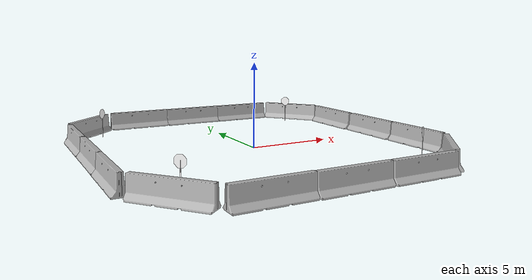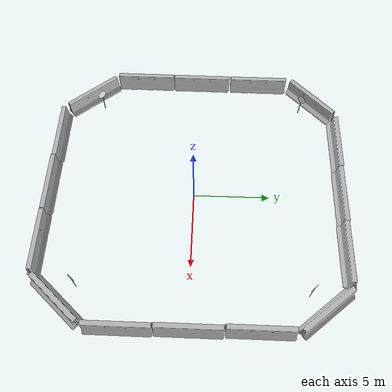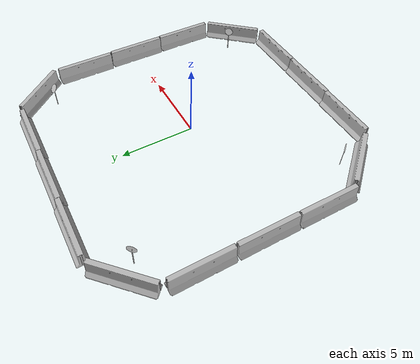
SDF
<?xml version='1.0'?>
<sdf version='1.7'>
  <model name='CloseArea1'>
    <model name='Stop Sign'>
      <static>1</static>
      <link name='link'>
        <collision name='collision'>
          <geometry>
            <mesh>
              <uri>model://stop_sign/meshes/stop_sign.dae</uri>
            </mesh>
          </geometry>
          <max_contacts>10</max_contacts>
          <surface>
            <contact>
              <ode/>
            </contact>
            <bounce/>
            <friction>
              <torsional>
                <ode/>
              </torsional>
              <ode/>
            </friction>
          </surface>
        </collision>
        <visual name='visual'>
          <geometry>
            <mesh>
              <uri>model://stop_sign/meshes/stop_sign.dae</uri>
            </mesh>
          </geometry>
          <material>
            <script>
              <uri>model://stop_sign/materials/scripts</uri>
              <uri>model://stop_sign/materials/textures</uri>
              <name>StopSign/Diffuse</name>
            </script>
          </material>
        </visual>
        <self_collide>0</self_collide>
        <enable_wind>0</enable_wind>
        <kinematic>0</kinematic>
      </link>
      <pose>-7.22822 7.37397 0.007017 0 -0 0.817531</pose>
    </model>
    <model name='Stop Sign_clone'>
      <static>1</static>
      <link name='link'>
        <collision name='collision'>
          <geometry>
            <mesh>
              <uri>model://stop_sign/meshes/stop_sign.dae</uri>
            </mesh>
          </geometry>
          <max_contacts>10</max_contacts>
          <surface>
            <contact>
              <ode/>
            </contact>
            <bounce/>
            <friction>
              <torsional>
                <ode/>
              </torsional>
              <ode/>
            </friction>
          </surface>
        </collision>
        <visual name='visual'>
          <geometry>
            <mesh>
              <uri>model://stop_sign/meshes/stop_sign.dae</uri>
            </mesh>
          </geometry>
          <material>
            <script>
              <uri>model://stop_sign/materials/scripts</uri>
              <uri>model://stop_sign/materials/textures</uri>
              <name>StopSign/Diffuse</name>
            </script>
          </material>
        </visual>
        <self_collide>0</self_collide>
        <enable_wind>0</enable_wind>
        <kinematic>0</kinematic>
      </link>
      <pose>-7.13821 -6.82157 0.007016 0 -0 2.33967</pose>
    </model>
    <model name='Stop Sign_clone_0'>
      <static>1</static>
      <link name='link'>
        <collision name='collision'>
          <geometry>
            <mesh>
              <uri>model://stop_sign/meshes/stop_sign.dae</uri>
            </mesh>
          </geometry>
          <max_contacts>10</max_contacts>
          <surface>
            <contact>
              <ode/>
            </contact>
            <bounce/>
            <friction>
              <torsional>
                <ode/>
              </torsional>
              <ode/>
            </friction>
          </surface>
        </collision>
        <visual name='visual'>
          <geometry>
            <mesh>
              <uri>model://stop_sign/meshes/stop_sign.dae</uri>
            </mesh>
          </geometry>
          <material>
            <script>
              <uri>model://stop_sign/materials/scripts</uri>
              <uri>model://stop_sign/materials/textures</uri>
              <name>StopSign/Diffuse</name>
            </script>
          </material>
        </visual>
        <self_collide>0</self_collide>
        <enable_wind>0</enable_wind>
        <kinematic>0</kinematic>
      </link>
      <pose>6.50021 -6.86088 0.007016 0 0 -2.26485</pose>
    </model>
    <model name='Stop Sign_clone_1'>
      <static>1</static>
      <link name='link'>
        <collision name='collision'>
          <geometry>
            <mesh>
              <uri>model://stop_sign/meshes/stop_sign.dae</uri>
            </mesh>
          </geometry>
          <max_contacts>10</max_contacts>
          <surface>
            <contact>
              <ode/>
            </contact>
            <bounce/>
            <friction>
              <torsional>
                <ode/>
              </torsional>
              <ode/>
            </friction>
          </surface>
        </collision>
        <visual name='visual'>
          <geometry>
            <mesh>
              <uri>model://stop_sign/meshes/stop_sign.dae</uri>
            </mesh>
          </geometry>
          <material>
            <script>
              <uri>model://stop_sign/materials/scripts</uri>
              <uri>model://stop_sign/materials/textures</uri>
              <name>StopSign/Diffuse</name>
            </script>
          </material>
        </visual>
        <self_collide>0</self_collide>
        <enable_wind>0</enable_wind>
        <kinematic>0</kinematic>
      </link>
      <pose>6.57883 7.20988 0.007016 0 0 -0.824905</pose>
    </model>
    <model name='jersey_barrier'>
      <static>1</static>
      <link name='link'>
        <visual name='visual'>
          <geometry>
            <mesh>
              <uri>model://jersey_barrier/meshes/jersey_barrier.dae</uri>
            </mesh>
          </geometry>
        </visual>
        <collision name='upright'>
          <pose>0 0 0.5715 0 -0 0</pose>
          <geometry>
            <box>
              <size>4.06542 0.3063 1.143</size>
            </box>
          </geometry>
          <max_contacts>10</max_contacts>
          <surface>
            <contact>
              <ode/>
            </contact>
            <bounce/>
            <friction>
              <torsional>
                <ode/>
              </torsional>
              <ode/>
            </friction>
          </surface>
        </collision>
        <collision name='base'>
          <pose>0 0 0.032258 0 -0 0</pose>
          <geometry>
            <box>
              <size>4.06542 0.8107 0.064516</size>
            </box>
          </geometry>
          <max_contacts>10</max_contacts>
          <surface>
            <contact>
              <ode/>
            </contact>
            <bounce/>
            <friction>
              <torsional>
                <ode/>
              </torsional>
              <ode/>
            </friction>
          </surface>
        </collision>
        <collision name='base2'>
          <pose>0 0 0.1 0 -0 0</pose>
          <geometry>
            <box>
              <size>4.06542 0.65 0.1</size>
            </box>
          </geometry>
          <max_contacts>10</max_contacts>
          <surface>
            <contact>
              <ode/>
            </contact>
            <bounce/>
            <friction>
              <torsional>
                <ode/>
              </torsional>
              <ode/>
            </friction>
          </surface>
        </collision>
        <collision name='base3'>
          <pose>0 0 0.2 0 -0 0</pose>
          <geometry>
            <box>
              <size>4.06542 0.5 0.1</size>
            </box>
          </geometry>
          <max_contacts>10</max_contacts>
          <surface>
            <contact>
              <ode/>
            </contact>
            <bounce/>
            <friction>
              <torsional>
                <ode/>
              </torsional>
              <ode/>
            </friction>
          </surface>
        </collision>
        <collision name='left-angle'>
          <pose>0 -0.224 0.2401 0.9 -0 0</pose>
          <geometry>
            <box>
              <size>4.06542 0.5 0.064516</size>
            </box>
          </geometry>
          <max_contacts>10</max_contacts>
          <surface>
            <contact>
              <ode/>
            </contact>
            <bounce/>
            <friction>
              <torsional>
                <ode/>
              </torsional>
              <ode/>
            </friction>
          </surface>
        </collision>
        <collision name='right-angle'>
          <pose>0 0.224 0.2401 -0.9 0 0</pose>
          <geometry>
            <box>
              <size>4.06542 0.5 0.064516</size>
            </box>
          </geometry>
          <max_contacts>10</max_contacts>
          <surface>
            <contact>
              <ode/>
            </contact>
            <bounce/>
            <friction>
              <torsional>
                <ode/>
              </torsional>
              <ode/>
            </friction>
          </surface>
        </collision>
        <self_collide>0</self_collide>
        <enable_wind>0</enable_wind>
        <kinematic>0</kinematic>
      </link>
      <pose>7.49146 -7.87127 0.005921 0 -0 0.854903</pose>
    </model>
    <model name='jersey_barrier_clone'>
      <static>1</static>
      <link name='link'>
        <visual name='visual'>
          <geometry>
            <mesh>
              <uri>model://jersey_barrier/meshes/jersey_barrier.dae</uri>
            </mesh>
          </geometry>
        </visual>
        <collision name='upright'>
          <pose>0 0 0.5715 0 -0 0</pose>
          <geometry>
            <box>
              <size>4.06542 0.3063 1.143</size>
            </box>
          </geometry>
          <max_contacts>10</max_contacts>
          <surface>
            <contact>
              <ode/>
            </contact>
            <bounce/>
            <friction>
              <torsional>
                <ode/>
              </torsional>
              <ode/>
            </friction>
          </surface>
        </collision>
        <collision name='base'>
          <pose>0 0 0.032258 0 -0 0</pose>
          <geometry>
            <box>
              <size>4.06542 0.8107 0.064516</size>
            </box>
          </geometry>
          <max_contacts>10</max_contacts>
          <surface>
            <contact>
              <ode/>
            </contact>
            <bounce/>
            <friction>
              <torsional>
                <ode/>
              </torsional>
              <ode/>
            </friction>
          </surface>
        </collision>
        <collision name='base2'>
          <pose>0 0 0.1 0 -0 0</pose>
          <geometry>
            <box>
              <size>4.06542 0.65 0.1</size>
            </box>
          </geometry>
          <max_contacts>10</max_contacts>
          <surface>
            <contact>
              <ode/>
            </contact>
            <bounce/>
            <friction>
              <torsional>
                <ode/>
              </torsional>
              <ode/>
            </friction>
          </surface>
        </collision>
        <collision name='base3'>
          <pose>0 0 0.2 0 -0 0</pose>
          <geometry>
            <box>
              <size>4.06542 0.5 0.1</size>
            </box>
          </geometry>
          <max_contacts>10</max_contacts>
          <surface>
            <contact>
              <ode/>
            </contact>
            <bounce/>
            <friction>
              <torsional>
                <ode/>
              </torsional>
              <ode/>
            </friction>
          </surface>
        </collision>
        <collision name='left-angle'>
          <pose>0 -0.224 0.2401 0.9 -0 0</pose>
          <geometry>
            <box>
              <size>4.06542 0.5 0.064516</size>
            </box>
          </geometry>
          <max_contacts>10</max_contacts>
          <surface>
            <contact>
              <ode/>
            </contact>
            <bounce/>
            <friction>
              <torsional>
                <ode/>
              </torsional>
              <ode/>
            </friction>
          </surface>
        </collision>
        <collision name='right-angle'>
          <pose>0 0.224 0.2401 -0.9 0 0</pose>
          <geometry>
            <box>
              <size>4.06542 0.5 0.064516</size>
            </box>
          </geometry>
          <max_contacts>10</max_contacts>
          <surface>
            <contact>
              <ode/>
            </contact>
            <bounce/>
            <friction>
              <torsional>
                <ode/>
              </torsional>
              <ode/>
            </friction>
          </surface>
        </collision>
        <self_collide>0</self_collide>
        <enable_wind>0</enable_wind>
        <kinematic>0</kinematic>
      </link>
      <pose>7.60825 8.09586 0.003838 0 0 -0.877727</pose>
    </model>
    <model name='jersey_barrier_clone_0'>
      <static>1</static>
      <link name='link'>
        <visual name='visual'>
          <geometry>
            <mesh>
              <uri>model://jersey_barrier/meshes/jersey_barrier.dae</uri>
            </mesh>
          </geometry>
        </visual>
        <collision name='upright'>
          <pose>0 0 0.5715 0 -0 0</pose>
          <geometry>
            <box>
              <size>4.06542 0.3063 1.143</size>
            </box>
          </geometry>
          <max_contacts>10</max_contacts>
          <surface>
            <contact>
              <ode/>
            </contact>
            <bounce/>
            <friction>
              <torsional>
                <ode/>
              </torsional>
              <ode/>
            </friction>
          </surface>
        </collision>
        <collision name='base'>
          <pose>0 0 0.032258 0 -0 0</pose>
          <geometry>
            <box>
              <size>4.06542 0.8107 0.064516</size>
            </box>
          </geometry>
          <max_contacts>10</max_contacts>
          <surface>
            <contact>
              <ode/>
            </contact>
            <bounce/>
            <friction>
              <torsional>
                <ode/>
              </torsional>
              <ode/>
            </friction>
          </surface>
        </collision>
        <collision name='base2'>
          <pose>0 0 0.1 0 -0 0</pose>
          <geometry>
            <box>
              <size>4.06542 0.65 0.1</size>
            </box>
          </geometry>
          <max_contacts>10</max_contacts>
          <surface>
            <contact>
              <ode/>
            </contact>
            <bounce/>
            <friction>
              <torsional>
                <ode/>
              </torsional>
              <ode/>
            </friction>
          </surface>
        </collision>
        <collision name='base3'>
          <pose>0 0 0.2 0 -0 0</pose>
          <geometry>
            <box>
              <size>4.06542 0.5 0.1</size>
            </box>
          </geometry>
          <max_contacts>10</max_contacts>
          <surface>
            <contact>
              <ode/>
            </contact>
            <bounce/>
            <friction>
              <torsional>
                <ode/>
              </torsional>
              <ode/>
            </friction>
          </surface>
        </collision>
        <collision name='left-angle'>
          <pose>0 -0.224 0.2401 0.9 -0 0</pose>
          <geometry>
            <box>
              <size>4.06542 0.5 0.064516</size>
            </box>
          </geometry>
          <max_contacts>10</max_contacts>
          <surface>
            <contact>
              <ode/>
            </contact>
            <bounce/>
            <friction>
              <torsional>
                <ode/>
              </torsional>
              <ode/>
            </friction>
          </surface>
        </collision>
        <collision name='right-angle'>
          <pose>0 0.224 0.2401 -0.9 0 0</pose>
          <geometry>
            <box>
              <size>4.06542 0.5 0.064516</size>
            </box>
          </geometry>
          <max_contacts>10</max_contacts>
          <surface>
            <contact>
              <ode/>
            </contact>
            <bounce/>
            <friction>
              <torsional>
                <ode/>
              </torsional>
              <ode/>
            </friction>
          </surface>
        </collision>
        <self_collide>0</self_collide>
        <enable_wind>0</enable_wind>
        <kinematic>0</kinematic>
      </link>
      <pose>3.88632 -9.57923 0.003838 0 -0 0</pose>
    </model>
    <model name='jersey_barrier_clone_1'>
      <static>1</static>
      <link name='link'>
        <visual name='visual'>
          <geometry>
            <mesh>
              <uri>model://jersey_barrier/meshes/jersey_barrier.dae</uri>
            </mesh>
          </geometry>
        </visual>
        <collision name='upright'>
          <pose>0 0 0.5715 0 -0 0</pose>
          <geometry>
            <box>
              <size>4.06542 0.3063 1.143</size>
            </box>
          </geometry>
          <max_contacts>10</max_contacts>
          <surface>
            <contact>
              <ode/>
            </contact>
            <bounce/>
            <friction>
              <torsional>
                <ode/>
              </torsional>
              <ode/>
            </friction>
          </surface>
        </collision>
        <collision name='base'>
          <pose>0 0 0.032258 0 -0 0</pose>
          <geometry>
            <box>
              <size>4.06542 0.8107 0.064516</size>
            </box>
          </geometry>
          <max_contacts>10</max_contacts>
          <surface>
            <contact>
              <ode/>
            </contact>
            <bounce/>
            <friction>
              <torsional>
                <ode/>
              </torsional>
              <ode/>
            </friction>
          </surface>
        </collision>
        <collision name='base2'>
          <pose>0 0 0.1 0 -0 0</pose>
          <geometry>
            <box>
              <size>4.06542 0.65 0.1</size>
            </box>
          </geometry>
          <max_contacts>10</max_contacts>
          <surface>
            <contact>
              <ode/>
            </contact>
            <bounce/>
            <friction>
              <torsional>
                <ode/>
              </torsional>
              <ode/>
            </friction>
          </surface>
        </collision>
        <collision name='base3'>
          <pose>0 0 0.2 0 -0 0</pose>
          <geometry>
            <box>
              <size>4.06542 0.5 0.1</size>
            </box>
          </geometry>
          <max_contacts>10</max_contacts>
          <surface>
            <contact>
              <ode/>
            </contact>
            <bounce/>
            <friction>
              <torsional>
                <ode/>
              </torsional>
              <ode/>
            </friction>
          </surface>
        </collision>
        <collision name='left-angle'>
          <pose>0 -0.224 0.2401 0.9 -0 0</pose>
          <geometry>
            <box>
              <size>4.06542 0.5 0.064516</size>
            </box>
          </geometry>
          <max_contacts>10</max_contacts>
          <surface>
            <contact>
              <ode/>
            </contact>
            <bounce/>
            <friction>
              <torsional>
                <ode/>
              </torsional>
              <ode/>
            </friction>
          </surface>
        </collision>
        <collision name='right-angle'>
          <pose>0 0.224 0.2401 -0.9 0 0</pose>
          <geometry>
            <box>
              <size>4.06542 0.5 0.064516</size>
            </box>
          </geometry>
          <max_contacts>10</max_contacts>
          <surface>
            <contact>
              <ode/>
            </contact>
            <bounce/>
            <friction>
              <torsional>
                <ode/>
              </torsional>
              <ode/>
            </friction>
          </surface>
        </collision>
        <self_collide>0</self_collide>
        <enable_wind>0</enable_wind>
        <kinematic>0</kinematic>
      </link>
      <pose>-0.211579 -9.56071 0.003838 0 -0 0</pose>
    </model>
    <model name='jersey_barrier_clone_2'>
      <static>1</static>
      <link name='link'>
        <visual name='visual'>
          <geometry>
            <mesh>
              <uri>model://jersey_barrier/meshes/jersey_barrier.dae</uri>
            </mesh>
          </geometry>
        </visual>
        <collision name='upright'>
          <pose>0 0 0.5715 0 -0 0</pose>
          <geometry>
            <box>
              <size>4.06542 0.3063 1.143</size>
            </box>
          </geometry>
          <max_contacts>10</max_contacts>
          <surface>
            <contact>
              <ode/>
            </contact>
            <bounce/>
            <friction>
              <torsional>
                <ode/>
              </torsional>
              <ode/>
            </friction>
          </surface>
        </collision>
        <collision name='base'>
          <pose>0 0 0.032258 0 -0 0</pose>
          <geometry>
            <box>
              <size>4.06542 0.8107 0.064516</size>
            </box>
          </geometry>
          <max_contacts>10</max_contacts>
          <surface>
            <contact>
              <ode/>
            </contact>
            <bounce/>
            <friction>
              <torsional>
                <ode/>
              </torsional>
              <ode/>
            </friction>
          </surface>
        </collision>
        <collision name='base2'>
          <pose>0 0 0.1 0 -0 0</pose>
          <geometry>
            <box>
              <size>4.06542 0.65 0.1</size>
            </box>
          </geometry>
          <max_contacts>10</max_contacts>
          <surface>
            <contact>
              <ode/>
            </contact>
            <bounce/>
            <friction>
              <torsional>
                <ode/>
              </torsional>
              <ode/>
            </friction>
          </surface>
        </collision>
        <collision name='base3'>
          <pose>0 0 0.2 0 -0 0</pose>
          <geometry>
            <box>
              <size>4.06542 0.5 0.1</size>
            </box>
          </geometry>
          <max_contacts>10</max_contacts>
          <surface>
            <contact>
              <ode/>
            </contact>
            <bounce/>
            <friction>
              <torsional>
                <ode/>
              </torsional>
              <ode/>
            </friction>
          </surface>
        </collision>
        <collision name='left-angle'>
          <pose>0 -0.224 0.2401 0.9 -0 0</pose>
          <geometry>
            <box>
              <size>4.06542 0.5 0.064516</size>
            </box>
          </geometry>
          <max_contacts>10</max_contacts>
          <surface>
            <contact>
              <ode/>
            </contact>
            <bounce/>
            <friction>
              <torsional>
                <ode/>
              </torsional>
              <ode/>
            </friction>
          </surface>
        </collision>
        <collision name='right-angle'>
          <pose>0 0.224 0.2401 -0.9 0 0</pose>
          <geometry>
            <box>
              <size>4.06542 0.5 0.064516</size>
            </box>
          </geometry>
          <max_contacts>10</max_contacts>
          <surface>
            <contact>
              <ode/>
            </contact>
            <bounce/>
            <friction>
              <torsional>
                <ode/>
              </torsional>
              <ode/>
            </friction>
          </surface>
        </collision>
        <self_collide>0</self_collide>
        <enable_wind>0</enable_wind>
        <kinematic>0</kinematic>
      </link>
      <pose>-4.26169 -9.50069 0.003838 0 -0 0</pose>
    </model>
    <model name='jersey_barrier_clone_3'>
      <static>1</static>
      <link name='link'>
        <visual name='visual'>
          <geometry>
            <mesh>
              <uri>model://jersey_barrier/meshes/jersey_barrier.dae</uri>
            </mesh>
          </geometry>
        </visual>
        <collision name='upright'>
          <pose>0 0 0.5715 0 -0 0</pose>
          <geometry>
            <box>
              <size>4.06542 0.3063 1.143</size>
            </box>
          </geometry>
          <max_contacts>10</max_contacts>
          <surface>
            <contact>
              <ode/>
            </contact>
            <bounce/>
            <friction>
              <torsional>
                <ode/>
              </torsional>
              <ode/>
            </friction>
          </surface>
        </collision>
        <collision name='base'>
          <pose>0 0 0.032258 0 -0 0</pose>
          <geometry>
            <box>
              <size>4.06542 0.8107 0.064516</size>
            </box>
          </geometry>
          <max_contacts>10</max_contacts>
          <surface>
            <contact>
              <ode/>
            </contact>
            <bounce/>
            <friction>
              <torsional>
                <ode/>
              </torsional>
              <ode/>
            </friction>
          </surface>
        </collision>
        <collision name='base2'>
          <pose>0 0 0.1 0 -0 0</pose>
          <geometry>
            <box>
              <size>4.06542 0.65 0.1</size>
            </box>
          </geometry>
          <max_contacts>10</max_contacts>
          <surface>
            <contact>
              <ode/>
            </contact>
            <bounce/>
            <friction>
              <torsional>
                <ode/>
              </torsional>
              <ode/>
            </friction>
          </surface>
        </collision>
        <collision name='base3'>
          <pose>0 0 0.2 0 -0 0</pose>
          <geometry>
            <box>
              <size>4.06542 0.5 0.1</size>
            </box>
          </geometry>
          <max_contacts>10</max_contacts>
          <surface>
            <contact>
              <ode/>
            </contact>
            <bounce/>
            <friction>
              <torsional>
                <ode/>
              </torsional>
              <ode/>
            </friction>
          </surface>
        </collision>
        <collision name='left-angle'>
          <pose>0 -0.224 0.2401 0.9 -0 0</pose>
          <geometry>
            <box>
              <size>4.06542 0.5 0.064516</size>
            </box>
          </geometry>
          <max_contacts>10</max_contacts>
          <surface>
            <contact>
              <ode/>
            </contact>
            <bounce/>
            <friction>
              <torsional>
                <ode/>
              </torsional>
              <ode/>
            </friction>
          </surface>
        </collision>
        <collision name='right-angle'>
          <pose>0 0.224 0.2401 -0.9 0 0</pose>
          <geometry>
            <box>
              <size>4.06542 0.5 0.064516</size>
            </box>
          </geometry>
          <max_contacts>10</max_contacts>
          <surface>
            <contact>
              <ode/>
            </contact>
            <bounce/>
            <friction>
              <torsional>
                <ode/>
              </torsional>
              <ode/>
            </friction>
          </surface>
        </collision>
        <self_collide>0</self_collide>
        <enable_wind>0</enable_wind>
        <kinematic>0</kinematic>
      </link>
      <pose>-7.84176 -7.62913 0.003838 0 0 -0.867873</pose>
    </model>
    <model name='jersey_barrier_clone_4'>
      <static>1</static>
      <link name='link'>
        <visual name='visual'>
          <geometry>
            <mesh>
              <uri>model://jersey_barrier/meshes/jersey_barrier.dae</uri>
            </mesh>
          </geometry>
        </visual>
        <collision name='upright'>
          <pose>0 0 0.5715 0 -0 0</pose>
          <geometry>
            <box>
              <size>4.06542 0.3063 1.143</size>
            </box>
          </geometry>
          <max_contacts>10</max_contacts>
          <surface>
            <contact>
              <ode/>
            </contact>
            <bounce/>
            <friction>
              <torsional>
                <ode/>
              </torsional>
              <ode/>
            </friction>
          </surface>
        </collision>
        <collision name='base'>
          <pose>0 0 0.032258 0 -0 0</pose>
          <geometry>
            <box>
              <size>4.06542 0.8107 0.064516</size>
            </box>
          </geometry>
          <max_contacts>10</max_contacts>
          <surface>
            <contact>
              <ode/>
            </contact>
            <bounce/>
            <friction>
              <torsional>
                <ode/>
              </torsional>
              <ode/>
            </friction>
          </surface>
        </collision>
        <collision name='base2'>
          <pose>0 0 0.1 0 -0 0</pose>
          <geometry>
            <box>
              <size>4.06542 0.65 0.1</size>
            </box>
          </geometry>
          <max_contacts>10</max_contacts>
          <surface>
            <contact>
              <ode/>
            </contact>
            <bounce/>
            <friction>
              <torsional>
                <ode/>
              </torsional>
              <ode/>
            </friction>
          </surface>
        </collision>
        <collision name='base3'>
          <pose>0 0 0.2 0 -0 0</pose>
          <geometry>
            <box>
              <size>4.06542 0.5 0.1</size>
            </box>
          </geometry>
          <max_contacts>10</max_contacts>
          <surface>
            <contact>
              <ode/>
            </contact>
            <bounce/>
            <friction>
              <torsional>
                <ode/>
              </torsional>
              <ode/>
            </friction>
          </surface>
        </collision>
        <collision name='left-angle'>
          <pose>0 -0.224 0.2401 0.9 -0 0</pose>
          <geometry>
            <box>
              <size>4.06542 0.5 0.064516</size>
            </box>
          </geometry>
          <max_contacts>10</max_contacts>
          <surface>
            <contact>
              <ode/>
            </contact>
            <bounce/>
            <friction>
              <torsional>
                <ode/>
              </torsional>
              <ode/>
            </friction>
          </surface>
        </collision>
        <collision name='right-angle'>
          <pose>0 0.224 0.2401 -0.9 0 0</pose>
          <geometry>
            <box>
              <size>4.06542 0.5 0.064516</size>
            </box>
          </geometry>
          <max_contacts>10</max_contacts>
          <surface>
            <contact>
              <ode/>
            </contact>
            <bounce/>
            <friction>
              <torsional>
                <ode/>
              </torsional>
              <ode/>
            </friction>
          </surface>
        </collision>
        <self_collide>0</self_collide>
        <enable_wind>0</enable_wind>
        <kinematic>0</kinematic>
      </link>
      <pose>3.98348 9.66846 0.003838 0 -0 0</pose>
    </model>
    <model name='jersey_barrier_clone_5'>
      <static>1</static>
      <link name='link'>
        <visual name='visual'>
          <geometry>
            <mesh>
              <uri>model://jersey_barrier/meshes/jersey_barrier.dae</uri>
            </mesh>
          </geometry>
        </visual>
        <collision name='upright'>
          <pose>0 0 0.5715 0 -0 0</pose>
          <geometry>
            <box>
              <size>4.06542 0.3063 1.143</size>
            </box>
          </geometry>
          <max_contacts>10</max_contacts>
          <surface>
            <contact>
              <ode/>
            </contact>
            <bounce/>
            <friction>
              <torsional>
                <ode/>
              </torsional>
              <ode/>
            </friction>
          </surface>
        </collision>
        <collision name='base'>
          <pose>0 0 0.032258 0 -0 0</pose>
          <geometry>
            <box>
              <size>4.06542 0.8107 0.064516</size>
            </box>
          </geometry>
          <max_contacts>10</max_contacts>
          <surface>
            <contact>
              <ode/>
            </contact>
            <bounce/>
            <friction>
              <torsional>
                <ode/>
              </torsional>
              <ode/>
            </friction>
          </surface>
        </collision>
        <collision name='base2'>
          <pose>0 0 0.1 0 -0 0</pose>
          <geometry>
            <box>
              <size>4.06542 0.65 0.1</size>
            </box>
          </geometry>
          <max_contacts>10</max_contacts>
          <surface>
            <contact>
              <ode/>
            </contact>
            <bounce/>
            <friction>
              <torsional>
                <ode/>
              </torsional>
              <ode/>
            </friction>
          </surface>
        </collision>
        <collision name='base3'>
          <pose>0 0 0.2 0 -0 0</pose>
          <geometry>
            <box>
              <size>4.06542 0.5 0.1</size>
            </box>
          </geometry>
          <max_contacts>10</max_contacts>
          <surface>
            <contact>
              <ode/>
            </contact>
            <bounce/>
            <friction>
              <torsional>
                <ode/>
              </torsional>
              <ode/>
            </friction>
          </surface>
        </collision>
        <collision name='left-angle'>
          <pose>0 -0.224 0.2401 0.9 -0 0</pose>
          <geometry>
            <box>
              <size>4.06542 0.5 0.064516</size>
            </box>
          </geometry>
          <max_contacts>10</max_contacts>
          <surface>
            <contact>
              <ode/>
            </contact>
            <bounce/>
            <friction>
              <torsional>
                <ode/>
              </torsional>
              <ode/>
            </friction>
          </surface>
        </collision>
        <collision name='right-angle'>
          <pose>0 0.224 0.2401 -0.9 0 0</pose>
          <geometry>
            <box>
              <size>4.06542 0.5 0.064516</size>
            </box>
          </geometry>
          <max_contacts>10</max_contacts>
          <surface>
            <contact>
              <ode/>
            </contact>
            <bounce/>
            <friction>
              <torsional>
                <ode/>
              </torsional>
              <ode/>
            </friction>
          </surface>
        </collision>
        <self_collide>0</self_collide>
        <enable_wind>0</enable_wind>
        <kinematic>0</kinematic>
      </link>
      <pose>-0.027004 9.71828 0.003838 0 -0 0</pose>
    </model>
    <model name='jersey_barrier_clone_6'>
      <static>1</static>
      <link name='link'>
        <visual name='visual'>
          <geometry>
            <mesh>
              <uri>model://jersey_barrier/meshes/jersey_barrier.dae</uri>
            </mesh>
          </geometry>
        </visual>
        <collision name='upright'>
          <pose>0 0 0.5715 0 -0 0</pose>
          <geometry>
            <box>
              <size>4.06542 0.3063 1.143</size>
            </box>
          </geometry>
          <max_contacts>10</max_contacts>
          <surface>
            <contact>
              <ode/>
            </contact>
            <bounce/>
            <friction>
              <torsional>
                <ode/>
              </torsional>
              <ode/>
            </friction>
          </surface>
        </collision>
        <collision name='base'>
          <pose>0 0 0.032258 0 -0 0</pose>
          <geometry>
            <box>
              <size>4.06542 0.8107 0.064516</size>
            </box>
          </geometry>
          <max_contacts>10</max_contacts>
          <surface>
            <contact>
              <ode/>
            </contact>
            <bounce/>
            <friction>
              <torsional>
                <ode/>
              </torsional>
              <ode/>
            </friction>
          </surface>
        </collision>
        <collision name='base2'>
          <pose>0 0 0.1 0 -0 0</pose>
          <geometry>
            <box>
              <size>4.06542 0.65 0.1</size>
            </box>
          </geometry>
          <max_contacts>10</max_contacts>
          <surface>
            <contact>
              <ode/>
            </contact>
            <bounce/>
            <friction>
              <torsional>
                <ode/>
              </torsional>
              <ode/>
            </friction>
          </surface>
        </collision>
        <collision name='base3'>
          <pose>0 0 0.2 0 -0 0</pose>
          <geometry>
            <box>
              <size>4.06542 0.5 0.1</size>
            </box>
          </geometry>
          <max_contacts>10</max_contacts>
          <surface>
            <contact>
              <ode/>
            </contact>
            <bounce/>
            <friction>
              <torsional>
                <ode/>
              </torsional>
              <ode/>
            </friction>
          </surface>
        </collision>
        <collision name='left-angle'>
          <pose>0 -0.224 0.2401 0.9 -0 0</pose>
          <geometry>
            <box>
              <size>4.06542 0.5 0.064516</size>
            </box>
          </geometry>
          <max_contacts>10</max_contacts>
          <surface>
            <contact>
              <ode/>
            </contact>
            <bounce/>
            <friction>
              <torsional>
                <ode/>
              </torsional>
              <ode/>
            </friction>
          </surface>
        </collision>
        <collision name='right-angle'>
          <pose>0 0.224 0.2401 -0.9 0 0</pose>
          <geometry>
            <box>
              <size>4.06542 0.5 0.064516</size>
            </box>
          </geometry>
          <max_contacts>10</max_contacts>
          <surface>
            <contact>
              <ode/>
            </contact>
            <bounce/>
            <friction>
              <torsional>
                <ode/>
              </torsional>
              <ode/>
            </friction>
          </surface>
        </collision>
        <self_collide>0</self_collide>
        <enable_wind>0</enable_wind>
        <kinematic>0</kinematic>
      </link>
      <pose>-4.06241 9.7681 0.003838 0 -0 0</pose>
    </model>
    <model name='jersey_barrier_clone_7'>
      <static>1</static>
      <link name='link'>
        <visual name='visual'>
          <geometry>
            <mesh>
              <uri>model://jersey_barrier/meshes/jersey_barrier.dae</uri>
            </mesh>
          </geometry>
        </visual>
        <collision name='upright'>
          <pose>0 0 0.5715 0 -0 0</pose>
          <geometry>
            <box>
              <size>4.06542 0.3063 1.143</size>
            </box>
          </geometry>
          <max_contacts>10</max_contacts>
          <surface>
            <contact>
              <ode/>
            </contact>
            <bounce/>
            <friction>
              <torsional>
                <ode/>
              </torsional>
              <ode/>
            </friction>
          </surface>
        </collision>
        <collision name='base'>
          <pose>0 0 0.032258 0 -0 0</pose>
          <geometry>
            <box>
              <size>4.06542 0.8107 0.064516</size>
            </box>
          </geometry>
          <max_contacts>10</max_contacts>
          <surface>
            <contact>
              <ode/>
            </contact>
            <bounce/>
            <friction>
              <torsional>
                <ode/>
              </torsional>
              <ode/>
            </friction>
          </surface>
        </collision>
        <collision name='base2'>
          <pose>0 0 0.1 0 -0 0</pose>
          <geometry>
            <box>
              <size>4.06542 0.65 0.1</size>
            </box>
          </geometry>
          <max_contacts>10</max_contacts>
          <surface>
            <contact>
              <ode/>
            </contact>
            <bounce/>
            <friction>
              <torsional>
                <ode/>
              </torsional>
              <ode/>
            </friction>
          </surface>
        </collision>
        <collision name='base3'>
          <pose>0 0 0.2 0 -0 0</pose>
          <geometry>
            <box>
              <size>4.06542 0.5 0.1</size>
            </box>
          </geometry>
          <max_contacts>10</max_contacts>
          <surface>
            <contact>
              <ode/>
            </contact>
            <bounce/>
            <friction>
              <torsional>
                <ode/>
              </torsional>
              <ode/>
            </friction>
          </surface>
        </collision>
        <collision name='left-angle'>
          <pose>0 -0.224 0.2401 0.9 -0 0</pose>
          <geometry>
            <box>
              <size>4.06542 0.5 0.064516</size>
            </box>
          </geometry>
          <max_contacts>10</max_contacts>
          <surface>
            <contact>
              <ode/>
            </contact>
            <bounce/>
            <friction>
              <torsional>
                <ode/>
              </torsional>
              <ode/>
            </friction>
          </surface>
        </collision>
        <collision name='right-angle'>
          <pose>0 0.224 0.2401 -0.9 0 0</pose>
          <geometry>
            <box>
              <size>4.06542 0.5 0.064516</size>
            </box>
          </geometry>
          <max_contacts>10</max_contacts>
          <surface>
            <contact>
              <ode/>
            </contact>
            <bounce/>
            <friction>
              <torsional>
                <ode/>
              </torsional>
              <ode/>
            </friction>
          </surface>
        </collision>
        <self_collide>0</self_collide>
        <enable_wind>0</enable_wind>
        <kinematic>0</kinematic>
      </link>
      <pose>-7.88206 8.24937 0.003838 0 -0 0.777387</pose>
    </model>
    <model name='jersey_barrier_clone_8_clone'>
      <static>1</static>
      <link name='link'>
        <visual name='visual'>
          <geometry>
            <mesh>
              <uri>model://jersey_barrier/meshes/jersey_barrier.dae</uri>
            </mesh>
          </geometry>
        </visual>
        <collision name='upright'>
          <pose>0 0 0.5715 0 -0 0</pose>
          <geometry>
            <box>
              <size>4.06542 0.3063 1.143</size>
            </box>
          </geometry>
          <max_contacts>10</max_contacts>
          <surface>
            <contact>
              <ode/>
            </contact>
            <bounce/>
            <friction>
              <torsional>
                <ode/>
              </torsional>
              <ode/>
            </friction>
          </surface>
        </collision>
        <collision name='base'>
          <pose>0 0 0.032258 0 -0 0</pose>
          <geometry>
            <box>
              <size>4.06542 0.8107 0.064516</size>
            </box>
          </geometry>
          <max_contacts>10</max_contacts>
          <surface>
            <contact>
              <ode/>
            </contact>
            <bounce/>
            <friction>
              <torsional>
                <ode/>
              </torsional>
              <ode/>
            </friction>
          </surface>
        </collision>
        <collision name='base2'>
          <pose>0 0 0.1 0 -0 0</pose>
          <geometry>
            <box>
              <size>4.06542 0.65 0.1</size>
            </box>
          </geometry>
          <max_contacts>10</max_contacts>
          <surface>
            <contact>
              <ode/>
            </contact>
            <bounce/>
            <friction>
              <torsional>
                <ode/>
              </torsional>
              <ode/>
            </friction>
          </surface>
        </collision>
        <collision name='base3'>
          <pose>0 0 0.2 0 -0 0</pose>
          <geometry>
            <box>
              <size>4.06542 0.5 0.1</size>
            </box>
          </geometry>
          <max_contacts>10</max_contacts>
          <surface>
            <contact>
              <ode/>
            </contact>
            <bounce/>
            <friction>
              <torsional>
                <ode/>
              </torsional>
              <ode/>
            </friction>
          </surface>
        </collision>
        <collision name='left-angle'>
          <pose>0 -0.224 0.2401 0.9 -0 0</pose>
          <geometry>
            <box>
              <size>4.06542 0.5 0.064516</size>
            </box>
          </geometry>
          <max_contacts>10</max_contacts>
          <surface>
            <contact>
              <ode/>
            </contact>
            <bounce/>
            <friction>
              <torsional>
                <ode/>
              </torsional>
              <ode/>
            </friction>
          </surface>
        </collision>
        <collision name='right-angle'>
          <pose>0 0.224 0.2401 -0.9 0 0</pose>
          <geometry>
            <box>
              <size>4.06542 0.5 0.064516</size>
            </box>
          </geometry>
          <max_contacts>10</max_contacts>
          <surface>
            <contact>
              <ode/>
            </contact>
            <bounce/>
            <friction>
              <torsional>
                <ode/>
              </torsional>
              <ode/>
            </friction>
          </surface>
        </collision>
        <self_collide>0</self_collide>
        <enable_wind>0</enable_wind>
        <kinematic>0</kinematic>
      </link>
      <pose>-9.37857 4.41908 0.003838 0 -0 1.56837</pose>
    </model>
    <model name='jersey_barrier_clone_8_clone_0'>
      <static>1</static>
      <link name='link'>
        <visual name='visual'>
          <geometry>
            <mesh>
              <uri>model://jersey_barrier/meshes/jersey_barrier.dae</uri>
            </mesh>
          </geometry>
        </visual>
        <collision name='upright'>
          <pose>0 0 0.5715 0 -0 0</pose>
          <geometry>
            <box>
              <size>4.06542 0.3063 1.143</size>
            </box>
          </geometry>
          <max_contacts>10</max_contacts>
          <surface>
            <contact>
              <ode/>
            </contact>
            <bounce/>
            <friction>
              <torsional>
                <ode/>
              </torsional>
              <ode/>
            </friction>
          </surface>
        </collision>
        <collision name='base'>
          <pose>0 0 0.032258 0 -0 0</pose>
          <geometry>
            <box>
              <size>4.06542 0.8107 0.064516</size>
            </box>
          </geometry>
          <max_contacts>10</max_contacts>
          <surface>
            <contact>
              <ode/>
            </contact>
            <bounce/>
            <friction>
              <torsional>
                <ode/>
              </torsional>
              <ode/>
            </friction>
          </surface>
        </collision>
        <collision name='base2'>
          <pose>0 0 0.1 0 -0 0</pose>
          <geometry>
            <box>
              <size>4.06542 0.65 0.1</size>
            </box>
          </geometry>
          <max_contacts>10</max_contacts>
          <surface>
            <contact>
              <ode/>
            </contact>
            <bounce/>
            <friction>
              <torsional>
                <ode/>
              </torsional>
              <ode/>
            </friction>
          </surface>
        </collision>
        <collision name='base3'>
          <pose>0 0 0.2 0 -0 0</pose>
          <geometry>
            <box>
              <size>4.06542 0.5 0.1</size>
            </box>
          </geometry>
          <max_contacts>10</max_contacts>
          <surface>
            <contact>
              <ode/>
            </contact>
            <bounce/>
            <friction>
              <torsional>
                <ode/>
              </torsional>
              <ode/>
            </friction>
          </surface>
        </collision>
        <collision name='left-angle'>
          <pose>0 -0.224 0.2401 0.9 -0 0</pose>
          <geometry>
            <box>
              <size>4.06542 0.5 0.064516</size>
            </box>
          </geometry>
          <max_contacts>10</max_contacts>
          <surface>
            <contact>
              <ode/>
            </contact>
            <bounce/>
            <friction>
              <torsional>
                <ode/>
              </torsional>
              <ode/>
            </friction>
          </surface>
        </collision>
        <collision name='right-angle'>
          <pose>0 0.224 0.2401 -0.9 0 0</pose>
          <geometry>
            <box>
              <size>4.06542 0.5 0.064516</size>
            </box>
          </geometry>
          <max_contacts>10</max_contacts>
          <surface>
            <contact>
              <ode/>
            </contact>
            <bounce/>
            <friction>
              <torsional>
                <ode/>
              </torsional>
              <ode/>
            </friction>
          </surface>
        </collision>
        <self_collide>0</self_collide>
        <enable_wind>0</enable_wind>
        <kinematic>0</kinematic>
      </link>
      <pose>-9.382 0.245984 0.003838 0 -0 1.56837</pose>
    </model>
    <model name='jersey_barrier_clone_8_clone_1'>
      <static>1</static>
      <link name='link'>
        <visual name='visual'>
          <geometry>
            <mesh>
              <uri>model://jersey_barrier/meshes/jersey_barrier.dae</uri>
            </mesh>
          </geometry>
        </visual>
        <collision name='upright'>
          <pose>0 0 0.5715 0 -0 0</pose>
          <geometry>
            <box>
              <size>4.06542 0.3063 1.143</size>
            </box>
          </geometry>
          <max_contacts>10</max_contacts>
          <surface>
            <contact>
              <ode/>
            </contact>
            <bounce/>
            <friction>
              <torsional>
                <ode/>
              </torsional>
              <ode/>
            </friction>
          </surface>
        </collision>
        <collision name='base'>
          <pose>0 0 0.032258 0 -0 0</pose>
          <geometry>
            <box>
              <size>4.06542 0.8107 0.064516</size>
            </box>
          </geometry>
          <max_contacts>10</max_contacts>
          <surface>
            <contact>
              <ode/>
            </contact>
            <bounce/>
            <friction>
              <torsional>
                <ode/>
              </torsional>
              <ode/>
            </friction>
          </surface>
        </collision>
        <collision name='base2'>
          <pose>0 0 0.1 0 -0 0</pose>
          <geometry>
            <box>
              <size>4.06542 0.65 0.1</size>
            </box>
          </geometry>
          <max_contacts>10</max_contacts>
          <surface>
            <contact>
              <ode/>
            </contact>
            <bounce/>
            <friction>
              <torsional>
                <ode/>
              </torsional>
              <ode/>
            </friction>
          </surface>
        </collision>
        <collision name='base3'>
          <pose>0 0 0.2 0 -0 0</pose>
          <geometry>
            <box>
              <size>4.06542 0.5 0.1</size>
            </box>
          </geometry>
          <max_contacts>10</max_contacts>
          <surface>
            <contact>
              <ode/>
            </contact>
            <bounce/>
            <friction>
              <torsional>
                <ode/>
              </torsional>
              <ode/>
            </friction>
          </surface>
        </collision>
        <collision name='left-angle'>
          <pose>0 -0.224 0.2401 0.9 -0 0</pose>
          <geometry>
            <box>
              <size>4.06542 0.5 0.064516</size>
            </box>
          </geometry>
          <max_contacts>10</max_contacts>
          <surface>
            <contact>
              <ode/>
            </contact>
            <bounce/>
            <friction>
              <torsional>
                <ode/>
              </torsional>
              <ode/>
            </friction>
          </surface>
        </collision>
        <collision name='right-angle'>
          <pose>0 0.224 0.2401 -0.9 0 0</pose>
          <geometry>
            <box>
              <size>4.06542 0.5 0.064516</size>
            </box>
          </geometry>
          <max_contacts>10</max_contacts>
          <surface>
            <contact>
              <ode/>
            </contact>
            <bounce/>
            <friction>
              <torsional>
                <ode/>
              </torsional>
              <ode/>
            </friction>
          </surface>
        </collision>
        <self_collide>0</self_collide>
        <enable_wind>0</enable_wind>
        <kinematic>0</kinematic>
      </link>
      <pose>-9.40178 -3.87531 0.003838 0 -0 1.56837</pose>
    </model>
    <model name='jersey_barrier_clone_8_clone_2'>
      <static>1</static>
      <link name='link'>
        <visual name='visual'>
          <geometry>
            <mesh>
              <uri>model://jersey_barrier/meshes/jersey_barrier.dae</uri>
            </mesh>
          </geometry>
        </visual>
        <collision name='upright'>
          <pose>0 0 0.5715 0 -0 0</pose>
          <geometry>
            <box>
              <size>4.06542 0.3063 1.143</size>
            </box>
          </geometry>
          <max_contacts>10</max_contacts>
          <surface>
            <contact>
              <ode/>
            </contact>
            <bounce/>
            <friction>
              <torsional>
                <ode/>
              </torsional>
              <ode/>
            </friction>
          </surface>
        </collision>
        <collision name='base'>
          <pose>0 0 0.032258 0 -0 0</pose>
          <geometry>
            <box>
              <size>4.06542 0.8107 0.064516</size>
            </box>
          </geometry>
          <max_contacts>10</max_contacts>
          <surface>
            <contact>
              <ode/>
            </contact>
            <bounce/>
            <friction>
              <torsional>
                <ode/>
              </torsional>
              <ode/>
            </friction>
          </surface>
        </collision>
        <collision name='base2'>
          <pose>0 0 0.1 0 -0 0</pose>
          <geometry>
            <box>
              <size>4.06542 0.65 0.1</size>
            </box>
          </geometry>
          <max_contacts>10</max_contacts>
          <surface>
            <contact>
              <ode/>
            </contact>
            <bounce/>
            <friction>
              <torsional>
                <ode/>
              </torsional>
              <ode/>
            </friction>
          </surface>
        </collision>
        <collision name='base3'>
          <pose>0 0 0.2 0 -0 0</pose>
          <geometry>
            <box>
              <size>4.06542 0.5 0.1</size>
            </box>
          </geometry>
          <max_contacts>10</max_contacts>
          <surface>
            <contact>
              <ode/>
            </contact>
            <bounce/>
            <friction>
              <torsional>
                <ode/>
              </torsional>
              <ode/>
            </friction>
          </surface>
        </collision>
        <collision name='left-angle'>
          <pose>0 -0.224 0.2401 0.9 -0 0</pose>
          <geometry>
            <box>
              <size>4.06542 0.5 0.064516</size>
            </box>
          </geometry>
          <max_contacts>10</max_contacts>
          <surface>
            <contact>
              <ode/>
            </contact>
            <bounce/>
            <friction>
              <torsional>
                <ode/>
              </torsional>
              <ode/>
            </friction>
          </surface>
        </collision>
        <collision name='right-angle'>
          <pose>0 0.224 0.2401 -0.9 0 0</pose>
          <geometry>
            <box>
              <size>4.06542 0.5 0.064516</size>
            </box>
          </geometry>
          <max_contacts>10</max_contacts>
          <surface>
            <contact>
              <ode/>
            </contact>
            <bounce/>
            <friction>
              <torsional>
                <ode/>
              </torsional>
              <ode/>
            </friction>
          </surface>
        </collision>
        <self_collide>0</self_collide>
        <enable_wind>0</enable_wind>
        <kinematic>0</kinematic>
      </link>
      <pose>8.91876 -4.05311 0.003838 0 -0 1.56837</pose>
    </model>
    <model name='jersey_barrier_clone_8_clone_2_clone'>
      <static>1</static>
      <link name='link'>
        <visual name='visual'>
          <geometry>
            <mesh>
              <uri>model://jersey_barrier/meshes/jersey_barrier.dae</uri>
            </mesh>
          </geometry>
        </visual>
        <collision name='upright'>
          <pose>0 0 0.5715 0 -0 0</pose>
          <geometry>
            <box>
              <size>4.06542 0.3063 1.143</size>
            </box>
          </geometry>
          <max_contacts>10</max_contacts>
          <surface>
            <contact>
              <ode/>
            </contact>
            <bounce/>
            <friction>
              <torsional>
                <ode/>
              </torsional>
              <ode/>
            </friction>
          </surface>
        </collision>
        <collision name='base'>
          <pose>0 0 0.032258 0 -0 0</pose>
          <geometry>
            <box>
              <size>4.06542 0.8107 0.064516</size>
            </box>
          </geometry>
          <max_contacts>10</max_contacts>
          <surface>
            <contact>
              <ode/>
            </contact>
            <bounce/>
            <friction>
              <torsional>
                <ode/>
              </torsional>
              <ode/>
            </friction>
          </surface>
        </collision>
        <collision name='base2'>
          <pose>0 0 0.1 0 -0 0</pose>
          <geometry>
            <box>
              <size>4.06542 0.65 0.1</size>
            </box>
          </geometry>
          <max_contacts>10</max_contacts>
          <surface>
            <contact>
              <ode/>
            </contact>
            <bounce/>
            <friction>
              <torsional>
                <ode/>
              </torsional>
              <ode/>
            </friction>
          </surface>
        </collision>
        <collision name='base3'>
          <pose>0 0 0.2 0 -0 0</pose>
          <geometry>
            <box>
              <size>4.06542 0.5 0.1</size>
            </box>
          </geometry>
          <max_contacts>10</max_contacts>
          <surface>
            <contact>
              <ode/>
            </contact>
            <bounce/>
            <friction>
              <torsional>
                <ode/>
              </torsional>
              <ode/>
            </friction>
          </surface>
        </collision>
        <collision name='left-angle'>
          <pose>0 -0.224 0.2401 0.9 -0 0</pose>
          <geometry>
            <box>
              <size>4.06542 0.5 0.064516</size>
            </box>
          </geometry>
          <max_contacts>10</max_contacts>
          <surface>
            <contact>
              <ode/>
            </contact>
            <bounce/>
            <friction>
              <torsional>
                <ode/>
              </torsional>
              <ode/>
            </friction>
          </surface>
        </collision>
        <collision name='right-angle'>
          <pose>0 0.224 0.2401 -0.9 0 0</pose>
          <geometry>
            <box>
              <size>4.06542 0.5 0.064516</size>
            </box>
          </geometry>
          <max_contacts>10</max_contacts>
          <surface>
            <contact>
              <ode/>
            </contact>
            <bounce/>
            <friction>
              <torsional>
                <ode/>
              </torsional>
              <ode/>
            </friction>
          </surface>
        </collision>
        <self_collide>0</self_collide>
        <enable_wind>0</enable_wind>
        <kinematic>0</kinematic>
      </link>
      <pose>8.88877 0.058155 0.003838 0 -0 1.56837</pose>
    </model>
    <model name='jersey_barrier_clone_8_clone_2_clone_0'>
      <static>1</static>
      <link name='link'>
        <visual name='visual'>
          <geometry>
            <mesh>
              <uri>model://jersey_barrier/meshes/jersey_barrier.dae</uri>
            </mesh>
          </geometry>
        </visual>
        <collision name='upright'>
          <pose>0 0 0.5715 0 -0 0</pose>
          <geometry>
            <box>
              <size>4.06542 0.3063 1.143</size>
            </box>
          </geometry>
          <max_contacts>10</max_contacts>
          <surface>
            <contact>
              <ode/>
            </contact>
            <bounce/>
            <friction>
              <torsional>
                <ode/>
              </torsional>
              <ode/>
            </friction>
          </surface>
        </collision>
        <collision name='base'>
          <pose>0 0 0.032258 0 -0 0</pose>
          <geometry>
            <box>
              <size>4.06542 0.8107 0.064516</size>
            </box>
          </geometry>
          <max_contacts>10</max_contacts>
          <surface>
            <contact>
              <ode/>
            </contact>
            <bounce/>
            <friction>
              <torsional>
                <ode/>
              </torsional>
              <ode/>
            </friction>
          </surface>
        </collision>
        <collision name='base2'>
          <pose>0 0 0.1 0 -0 0</pose>
          <geometry>
            <box>
              <size>4.06542 0.65 0.1</size>
            </box>
          </geometry>
          <max_contacts>10</max_contacts>
          <surface>
            <contact>
              <ode/>
            </contact>
            <bounce/>
            <friction>
              <torsional>
                <ode/>
              </torsional>
              <ode/>
            </friction>
          </surface>
        </collision>
        <collision name='base3'>
          <pose>0 0 0.2 0 -0 0</pose>
          <geometry>
            <box>
              <size>4.06542 0.5 0.1</size>
            </box>
          </geometry>
          <max_contacts>10</max_contacts>
          <surface>
            <contact>
              <ode/>
            </contact>
            <bounce/>
            <friction>
              <torsional>
                <ode/>
              </torsional>
              <ode/>
            </friction>
          </surface>
        </collision>
        <collision name='left-angle'>
          <pose>0 -0.224 0.2401 0.9 -0 0</pose>
          <geometry>
            <box>
              <size>4.06542 0.5 0.064516</size>
            </box>
          </geometry>
          <max_contacts>10</max_contacts>
          <surface>
            <contact>
              <ode/>
            </contact>
            <bounce/>
            <friction>
              <torsional>
                <ode/>
              </torsional>
              <ode/>
            </friction>
          </surface>
        </collision>
        <collision name='right-angle'>
          <pose>0 0.224 0.2401 -0.9 0 0</pose>
          <geometry>
            <box>
              <size>4.06542 0.5 0.064516</size>
            </box>
          </geometry>
          <max_contacts>10</max_contacts>
          <surface>
            <contact>
              <ode/>
            </contact>
            <bounce/>
            <friction>
              <torsional>
                <ode/>
              </torsional>
              <ode/>
            </friction>
          </surface>
        </collision>
        <self_collide>0</self_collide>
        <enable_wind>0</enable_wind>
        <kinematic>0</kinematic>
      </link>
      <pose>8.82876 4.20093 0.003838 0 -0 1.56837</pose>
    </model>
    <static>0</static>
    <allow_auto_disable>1</allow_auto_disable>
  </model>
</sdf>
